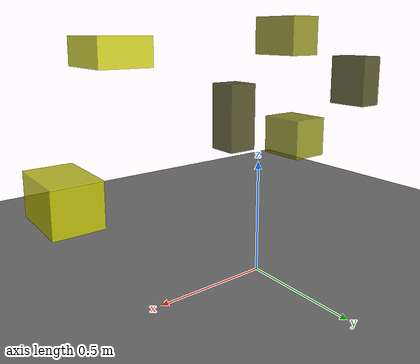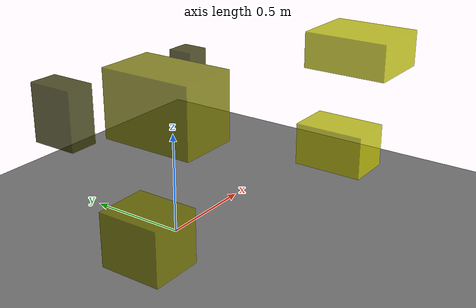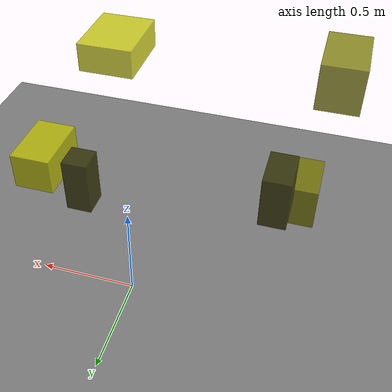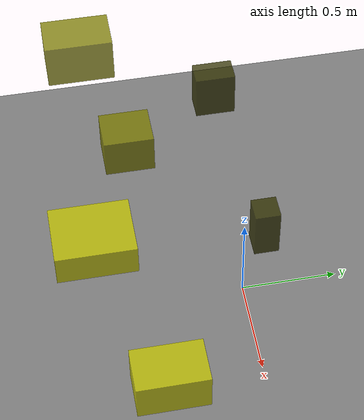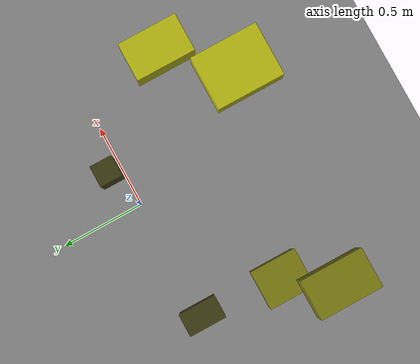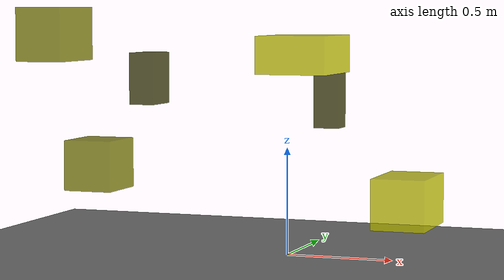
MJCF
<?xml version="1.0"?>
<mujoco model="obstacle_scene">
  <compiler angle="radian" coordinate="local"/>
  <option timestep="0.001" gravity="0 0 -9.81"/>

  <asset>
    <material name="obstacle_mat" rgba="0.8 0.8 0.0 0.8"/>
    <material name="ground_mat" rgba="0.5 0.5 0.5 1"/>
  </asset>

  <worldbody>
    <!-- Ground plane -->
    <geom name="ground" type="plane" size="3 3 0.1" material="ground_mat"/>

    <!-- Obstacles -->
    <body name="obstacle_0" pos="-0.678829 -0.028374 0.814075">
      <geom name="obs_0" type="box" size="0.060497 0.099188 0.121405" rgba="0.2 0.2 0.0 0.8"/>
    </body>
    <body name="obstacle_1" pos="-0.851109 -0.686789 1.033462">
      <geom name="obs_1" type="box" size="0.104730 0.165649 0.117347" rgba="0.5 0.5 0.0 0.8"/>
    </body>
    <body name="obstacle_2" pos="0.690051 -0.494587 0.338369">
      <geom name="obs_2" type="box" size="0.114274 0.176502 0.107018" rgba="0.8 0.8 0.0 0.8"/>
    </body>
    <body name="obstacle_3" pos="0.186103 0.052783 0.726556">
      <geom name="obs_3" type="box" size="0.058402 0.059901 0.130477" rgba="0.2 0.2 0.0 0.8"/>
    </body>
    <body name="obstacle_4" pos="-0.734383 -0.483231 0.446825">
      <geom name="obs_4" type="box" size="0.110845 0.130864 0.111939" rgba="0.5 0.5 0.0 0.8"/>
    </body>
    <body name="obstacle_5" pos="0.313760 -0.767637 0.958966">
      <geom name="obs_5" type="box" size="0.145870 0.182733 0.077387" rgba="0.8 0.8 0.0 0.8"/>
    </body>
  </worldbody>
</mujoco>
